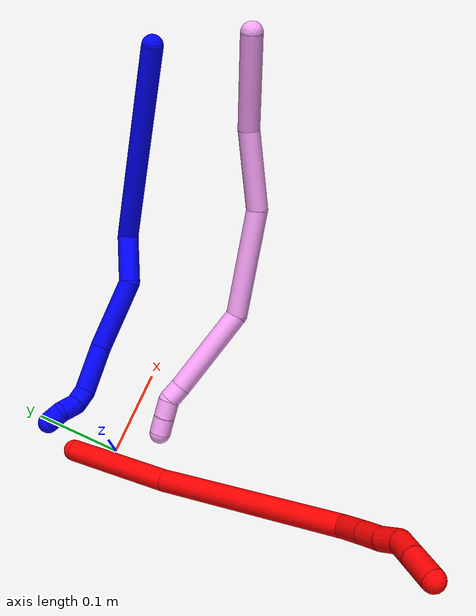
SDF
<sdf version="1.7">
 <world name="default">
  <model name="photoneo_s_sensor">
   <static>1</static>
   <pose>0 0 2 1.57079 1.57079 3.14159</pose>
   <link name="link">
    <inertial><mass>0.1</mass></inertial>
    <sensor name="sensor" type="depth">
     <update_rate>30</update_rate>
     <camera>
      <horizontal_fov>1.22</horizontal_fov>
      <image><width>1920</width><height>1200</height><format>B8G8R8</format></image>
      <clip><near>0.1</near><far>4</far></clip>
      <depth_camera><output>points</output></depth_camera>
     </camera>
     <plugin name="camera_plugin" filename="libgazebo_ros_depth_camera.so">
      <baseline>0.2</baseline>
      <alwaysOn>1</alwaysOn>
      <updateRate>0.0</updateRate>
      <cameraName>camera_ir</cameraName>
      <imageTopicName>/camera/color/image_raw</imageTopicName>
      <cameraInfoTopicName>/camera/color/camera_info</cameraInfoTopicName>
      <depthImageTopicName>/camera/depth/image_raw</depthImageTopicName>
      <depthImageCameraInfoTopicName>/camera/depth/camera_info</depthImageCameraInfoTopicName>
      <pointCloudTopicName>/camera/depth/points</pointCloudTopicName>
      <frameName>fr_optical</frameName>
      <pointCloudCutoff>0.1</pointCloudCutoff>
      <pointCloudCutoffMax>2.0</pointCloudCutoffMax>
      <distortionK1>0</distortionK1>
      <distortionK2>0</distortionK2>
      <distortionK3>0</distortionK3>
      <distortionT1>0</distortionT1>
      <distortionT2>0</distortionT2>
      <CxPrime>0</CxPrime>
      <Cx>0</Cx>
      <Cy>0</Cy>
      <focalLength>0</focalLength>
      <hackBaseline>0</hackBaseline>
     </plugin>
    </sensor>
   </link>
  </model>
  <model name="bin">
   <static>1</static>
   <link name="bottom">
    <collision name="collision-bottom">
     <pose>0 0 -0.01 0 -0 0</pose>
     <geometry><box><size>0.8 0.6 0.02</size></box></geometry>
     <surface>
      <friction><ode><mu>100</mu><mu2>100</mu2></ode></friction>
      <contact><collide_bitmask>65535</collide_bitmask></contact>
     </surface>
    </collision>
   </link>
   <link name="west_wall">
    <collision name="collision-west_wall">
     <pose>-0.41 0 0.1 0 -0 0</pose>
     <geometry><box><size>0.02 0.6 0.2</size></box></geometry>
     <surface>
      <friction><ode><mu>100</mu><mu2>100</mu2></ode></friction>
      <contact><collide_bitmask>65535</collide_bitmask></contact>
     </surface>
    </collision>
   </link>
   <link name="east_wall">
    <collision name="collision-east_wall">
     <pose>0.41 0 0.1 0 -0 0</pose>
     <geometry><box><size>0.02 0.6 0.2</size></box></geometry>
     <surface>
      <friction><ode><mu>100</mu><mu2>100</mu2></ode></friction>
      <contact><collide_bitmask>65535</collide_bitmask></contact>
     </surface>
    </collision>
   </link>
   <link name="south_wall">
    <collision name="collision-south_wall">
     <pose>0 -0.31 0.1 0 -0 0</pose>
     <geometry><box><size>0.8 0.02 0.2</size></box></geometry>
     <surface>
      <friction><ode><mu>100</mu><mu2>100</mu2></ode></friction>
      <contact><collide_bitmask>65535</collide_bitmask></contact>
     </surface>
    </collision>
   </link>
   <link name="north_wall">
    <collision name="collision-north_wall">
     <pose>0 0.31 0.1 0 -0 0</pose>
     <geometry><box><size>0.8 0.02 0.2</size></box></geometry>
     <surface>
      <friction><ode><mu>100</mu><mu2>100</mu2></ode></friction>
      <contact><collide_bitmask>65535</collide_bitmask></contact>
     </surface>
    </collision>
   </link>
  </model>
  <model name="1">
   <static>0</static>
   <link name="1">
    <collision name="collision-cylinder-e_1_1_4">
     <pose>-0.005474 0.007447 -0.118973 -3.07908 -0.045885 1.26627</pose>
     <geometry><cylinder><radius>0.0125</radius><length>0.238664</length></cylinder></geometry>
     <surface>
      <friction><ode><mu>1.16</mu><mu2>1.16</mu2><slip1>0</slip1><slip2>0</slip2></ode></friction>
      <contact><ode><kp>1e+06</kp><kd>1</kd><max_vel>0</max_vel><min_depth>0.001</min_depth></ode></contact>
     </surface>
    </collision>
    <visual name="visual-cylinder-e_1_1_4">
     <pose>-0.005474 0.007447 -0.118973 -3.07908 -0.045885 1.26627</pose>
     <geometry><cylinder><radius>0.0125</radius><length>0.238664</length></cylinder></geometry>
     <material><ambient>0 0 1 1</ambient></material>
    </visual>
    <collision name="collision-cylinder-e_2_4_5">
     <pose>-0.022508 -0.000977 -0.259351 2.50357 -0.409366 -1.12222</pose>
     <geometry><cylinder><radius>0.0125</radius><length>0.058092</length></cylinder></geometry>
     <surface>
      <friction><ode><mu>1.16</mu><mu2>1.16</mu2><slip1>0</slip1><slip2>0</slip2></ode></friction>
      <contact><ode><kp>1e+06</kp><kd>1</kd><max_vel>0</max_vel><min_depth>0.001</min_depth></ode></contact>
     </surface>
    </collision>
    <visual name="visual-cylinder-e_2_4_5">
     <pose>-0.022508 -0.000977 -0.259351 2.50357 -0.409366 -1.12222</pose>
     <geometry><cylinder><radius>0.0125</radius><length>0.058092</length></cylinder></geometry>
     <material><ambient>0 0 1 1</ambient></material>
    </visual>
    <collision name="collision-cylinder-e_3_5_6">
     <pose>-0.056474 -0.018297 -0.317218 3.10186 -0.550616 -3.00113</pose>
     <geometry><cylinder><radius>0.0125</radius><length>0.085643</length></cylinder></geometry>
     <surface>
      <friction><ode><mu>1.16</mu><mu2>1.16</mu2><slip1>0</slip1><slip2>0</slip2></ode></friction>
      <contact><ode><kp>1e+06</kp><kd>1</kd><max_vel>0</max_vel><min_depth>0.001</min_depth></ode></contact>
     </surface>
    </collision>
    <visual name="visual-cylinder-e_3_5_6">
     <pose>-0.056474 -0.018297 -0.317218 3.10186 -0.550616 -3.00113</pose>
     <geometry><cylinder><radius>0.0125</radius><length>0.085643</length></cylinder></geometry>
     <material><ambient>0 0 1 1</ambient></material>
    </visual>
    <collision name="collision-cylinder-e_4_6_7">
     <pose>-0.095344 -0.025201 -0.3766 2.90798 -0.610013 -2.42807</pose>
     <geometry><cylinder><radius>0.0125</radius><length>0.057484</length></cylinder></geometry>
     <surface>
      <friction><ode><mu>1.16</mu><mu2>1.16</mu2><slip1>0</slip1><slip2>0</slip2></ode></friction>
      <contact><ode><kp>1e+06</kp><kd>1</kd><max_vel>0</max_vel><min_depth>0.001</min_depth></ode></contact>
     </surface>
    </collision>
    <visual name="visual-cylinder-e_4_6_7">
     <pose>-0.095344 -0.025201 -0.3766 2.90798 -0.610013 -2.42807</pose>
     <geometry><cylinder><radius>0.0125</radius><length>0.057484</length></cylinder></geometry>
     <material><ambient>0 0 1 1</ambient></material>
    </visual>
    <collision name="collision-cylinder-e_5_7_8">
     <pose>-0.120784 -0.033505 -0.403036 2.4605 -1.10353 -2.0969</pose>
     <geometry><cylinder><radius>0.0125</radius><length>0.020103</length></cylinder></geometry>
     <surface>
      <friction><ode><mu>1.16</mu><mu2>1.16</mu2><slip1>0</slip1><slip2>0</slip2></ode></friction>
      <contact><ode><kp>1e+06</kp><kd>1</kd><max_vel>0</max_vel><min_depth>0.001</min_depth></ode></contact>
     </surface>
    </collision>
    <visual name="visual-cylinder-e_5_7_8">
     <pose>-0.120784 -0.033505 -0.403036 2.4605 -1.10353 -2.0969</pose>
     <geometry><cylinder><radius>0.0125</radius><length>0.020103</length></cylinder></geometry>
     <material><ambient>0 0 1 1</ambient></material>
    </visual>
    <collision name="collision-cylinder-e_6_8_9">
     <pose>-0.139515 -0.035138 -0.408383 -2.55435 -1.34919 2.41868</pose>
     <geometry><cylinder><radius>0.0125</radius><length>0.020002</length></cylinder></geometry>
     <surface>
      <friction><ode><mu>1.16</mu><mu2>1.16</mu2><slip1>0</slip1><slip2>0</slip2></ode></friction>
      <contact><ode><kp>1e+06</kp><kd>1</kd><max_vel>0</max_vel><min_depth>0.001</min_depth></ode></contact>
     </surface>
    </collision>
    <visual name="visual-cylinder-e_6_8_9">
     <pose>-0.139515 -0.035138 -0.408383 -2.55435 -1.34919 2.41868</pose>
     <geometry><cylinder><radius>0.0125</radius><length>0.020002</length></cylinder></geometry>
     <material><ambient>0 0 1 1</ambient></material>
    </visual>
    <collision name="collision-cylinder-e_7_9_2">
     <pose>-0.156912 -0.03128 -0.416109 -2.72065 -0.868951 2.2787</pose>
     <geometry><cylinder><radius>0.0125</radius><length>0.020012</length></cylinder></geometry>
     <surface>
      <friction><ode><mu>1.16</mu><mu2>1.16</mu2><slip1>0</slip1><slip2>0</slip2></ode></friction>
      <contact><ode><kp>1e+06</kp><kd>1</kd><max_vel>0</max_vel><min_depth>0.001</min_depth></ode></contact>
     </surface>
    </collision>
    <visual name="visual-cylinder-e_7_9_2">
     <pose>-0.156912 -0.03128 -0.416109 -2.72065 -0.868951 2.2787</pose>
     <geometry><cylinder><radius>0.0125</radius><length>0.020012</length></cylinder></geometry>
     <material><ambient>0 0 1 1</ambient></material>
    </visual>
    <collision name="collision-sphere-2">
     <pose>-0.164554 -0.02864 -0.422006 0 -0 0</pose>
     <geometry><sphere><radius>0.0125</radius></sphere></geometry>
     <surface>
      <friction><ode><mu>1.16</mu><mu2>1.16</mu2><slip1>0</slip1><slip2>0</slip2></ode></friction>
      <contact><ode><kp>1e+06</kp><kd>1</kd><max_vel>0</max_vel><min_depth>0.001</min_depth></ode></contact>
     </surface>
    </collision>
    <visual name="visual-sphere-2">
     <pose>-0.164554 -0.02864 -0.422006 0 -0 0</pose>
     <geometry><sphere><radius>0.0125</radius></sphere></geometry>
     <material><ambient>0 0 1 1</ambient></material>
    </visual>
    <collision name="collision-sphere-9">
     <pose>-0.149271 -0.03392 -0.410213 0 -0 0</pose>
     <geometry><sphere><radius>0.0125</radius></sphere></geometry>
     <surface>
      <friction><ode><mu>1.16</mu><mu2>1.16</mu2><slip1>0</slip1><slip2>0</slip2></ode></friction>
      <contact><ode><kp>1e+06</kp><kd>1</kd><max_vel>0</max_vel><min_depth>0.001</min_depth></ode></contact>
     </surface>
    </collision>
    <visual name="visual-sphere-9">
     <pose>-0.149271 -0.03392 -0.410213 0 -0 0</pose>
     <geometry><sphere><radius>0.0125</radius></sphere></geometry>
     <material><ambient>0 0 1 1</ambient></material>
    </visual>
    <collision name="collision-sphere-4">
     <pose>-0.010947 0.014893 -0.237947 0 -0 0</pose>
     <geometry><sphere><radius>0.0125</radius></sphere></geometry>
     <surface>
      <friction><ode><mu>1.16</mu><mu2>1.16</mu2><slip1>0</slip1><slip2>0</slip2></ode></friction>
      <contact><ode><kp>1e+06</kp><kd>1</kd><max_vel>0</max_vel><min_depth>0.001</min_depth></ode></contact>
     </surface>
    </collision>
    <visual name="visual-sphere-4">
     <pose>-0.010947 0.014893 -0.237947 0 -0 0</pose>
     <geometry><sphere><radius>0.0125</radius></sphere></geometry>
     <material><ambient>0 0 1 1</ambient></material>
    </visual>
    <collision name="collision-sphere-1">
     <geometry><sphere><radius>0.0125</radius></sphere></geometry>
     <surface>
      <friction><ode><mu>1.16</mu><mu2>1.16</mu2><slip1>0</slip1><slip2>0</slip2></ode></friction>
      <contact><ode><kp>1e+06</kp><kd>1</kd><max_vel>0</max_vel><min_depth>0.001</min_depth></ode></contact>
     </surface>
    </collision>
    <visual name="visual-sphere-1">
     <geometry><sphere><radius>0.0125</radius></sphere></geometry>
     <material><ambient>0 0 1 1</ambient></material>
    </visual>
    <collision name="collision-sphere-8">
     <pose>-0.129758 -0.036356 -0.406553 0 -0 0</pose>
     <geometry><sphere><radius>0.0125</radius></sphere></geometry>
     <surface>
      <friction><ode><mu>1.16</mu><mu2>1.16</mu2><slip1>0</slip1><slip2>0</slip2></ode></friction>
      <contact><ode><kp>1e+06</kp><kd>1</kd><max_vel>0</max_vel><min_depth>0.001</min_depth></ode></contact>
     </surface>
    </collision>
    <visual name="visual-sphere-8">
     <pose>-0.129758 -0.036356 -0.406553 0 -0 0</pose>
     <geometry><sphere><radius>0.0125</radius></sphere></geometry>
     <material><ambient>0 0 1 1</ambient></material>
    </visual>
    <collision name="collision-sphere-5">
     <pose>-0.034069 -0.016848 -0.280755 0 -0 0</pose>
     <geometry><sphere><radius>0.0125</radius></sphere></geometry>
     <surface>
      <friction><ode><mu>1.16</mu><mu2>1.16</mu2><slip1>0</slip1><slip2>0</slip2></ode></friction>
      <contact><ode><kp>1e+06</kp><kd>1</kd><max_vel>0</max_vel><min_depth>0.001</min_depth></ode></contact>
     </surface>
    </collision>
    <visual name="visual-sphere-5">
     <pose>-0.034069 -0.016848 -0.280755 0 -0 0</pose>
     <geometry><sphere><radius>0.0125</radius></sphere></geometry>
     <material><ambient>0 0 1 1</ambient></material>
    </visual>
    <collision name="collision-sphere-6">
     <pose>-0.078879 -0.019747 -0.353682 0 -0 0</pose>
     <geometry><sphere><radius>0.0125</radius></sphere></geometry>
     <surface>
      <friction><ode><mu>1.16</mu><mu2>1.16</mu2><slip1>0</slip1><slip2>0</slip2></ode></friction>
      <contact><ode><kp>1e+06</kp><kd>1</kd><max_vel>0</max_vel><min_depth>0.001</min_depth></ode></contact>
     </surface>
    </collision>
    <visual name="visual-sphere-6">
     <pose>-0.078879 -0.019747 -0.353682 0 -0 0</pose>
     <geometry><sphere><radius>0.0125</radius></sphere></geometry>
     <material><ambient>0 0 1 1</ambient></material>
    </visual>
    <collision name="collision-sphere-7">
     <pose>-0.11181 -0.030654 -0.399518 0 -0 0</pose>
     <geometry><sphere><radius>0.0125</radius></sphere></geometry>
     <surface>
      <friction><ode><mu>1.16</mu><mu2>1.16</mu2><slip1>0</slip1><slip2>0</slip2></ode></friction>
      <contact><ode><kp>1e+06</kp><kd>1</kd><max_vel>0</max_vel><min_depth>0.001</min_depth></ode></contact>
     </surface>
    </collision>
    <visual name="visual-sphere-7">
     <pose>-0.11181 -0.030654 -0.399518 0 -0 0</pose>
     <geometry><sphere><radius>0.0125</radius></sphere></geometry>
     <material><ambient>0 0 1 1</ambient></material>
    </visual>
    <inertial>
     <pose>-0.04258 -0.006595 -0.23375 0 -0 0</pose>
     <mass>0.5</mass>
     <inertia>
      <ixx>0.001334</ixx>
      <ixy>0</ixy>
      <ixz>0</ixz>
      <iyy>0.000788</iyy>
      <iyz>0</iyz>
      <izz>1.4e-05</izz>
     </inertia>
    </inertial>
   </link>
   <pose>0.402296 0.12955 0.218787 -0.582894 0.566936 -0.564974</pose>
  </model>
  <model name="2">
   <static>0</static>
   <link name="2">
    <collision name="collision-cylinder-e_1_1_4">
     <pose>-0.002892 -0.038057 0.05107 0.64042 -0.045378 -0.015051</pose>
     <geometry><cylinder><radius>0.0125</radius><length>0.127511</length></cylinder></geometry>
     <surface>
      <friction><ode><mu>1.16</mu><mu2>1.16</mu2><slip1>0</slip1><slip2>0</slip2></ode></friction>
      <contact><ode><kp>1e+06</kp><kd>1</kd><max_vel>0</max_vel><min_depth>0.001</min_depth></ode></contact>
     </surface>
    </collision>
    <visual name="visual-cylinder-e_1_1_4">
     <pose>-0.002892 -0.038057 0.05107 0.64042 -0.045378 -0.015051</pose>
     <geometry><cylinder><radius>0.0125</radius><length>0.127511</length></cylinder></geometry>
     <material><ambient>1 0 0 1</ambient></material>
    </visual>
    <collision name="collision-cylinder-e_2_4_5">
     <pose>-0.00144 -0.148526 0.187161 0.705471 0.03888 0.014315</pose>
     <geometry><cylinder><radius>0.0125</radius><length>0.223528</length></cylinder></geometry>
     <surface>
      <friction><ode><mu>1.16</mu><mu2>1.16</mu2><slip1>0</slip1><slip2>0</slip2></ode></friction>
      <contact><ode><kp>1e+06</kp><kd>1</kd><max_vel>0</max_vel><min_depth>0.001</min_depth></ode></contact>
     </surface>
    </collision>
    <visual name="visual-cylinder-e_2_4_5">
     <pose>-0.00144 -0.148526 0.187161 0.705471 0.03888 0.014315</pose>
     <geometry><cylinder><radius>0.0125</radius><length>0.223528</length></cylinder></geometry>
     <material><ambient>1 0 0 1</ambient></material>
    </visual>
    <collision name="collision-cylinder-e_3_5_6">
     <pose>0.011501 -0.229907 0.283537 0.668589 0.536075 0.19021</pose>
     <geometry><cylinder><radius>0.0125</radius><length>0.03366</length></cylinder></geometry>
     <surface>
      <friction><ode><mu>1.16</mu><mu2>1.16</mu2><slip1>0</slip1><slip2>0</slip2></ode></friction>
      <contact><ode><kp>1e+06</kp><kd>1</kd><max_vel>0</max_vel><min_depth>0.001</min_depth></ode></contact>
     </surface>
    </collision>
    <visual name="visual-cylinder-e_3_5_6">
     <pose>0.011501 -0.229907 0.283537 0.668589 0.536075 0.19021</pose>
     <geometry><cylinder><radius>0.0125</radius><length>0.03366</length></cylinder></geometry>
     <material><ambient>1 0 0 1</ambient></material>
    </visual>
    <collision name="collision-cylinder-e_4_6_7">
     <pose>0.027093 -0.246211 0.304517 0.651144 0.524123 0.180608</pose>
     <geometry><cylinder><radius>0.0125</radius><length>0.027957</length></cylinder></geometry>
     <surface>
      <friction><ode><mu>1.16</mu><mu2>1.16</mu2><slip1>0</slip1><slip2>0</slip2></ode></friction>
      <contact><ode><kp>1e+06</kp><kd>1</kd><max_vel>0</max_vel><min_depth>0.001</min_depth></ode></contact>
     </surface>
    </collision>
    <visual name="visual-cylinder-e_4_6_7">
     <pose>0.027093 -0.246211 0.304517 0.651144 0.524123 0.180608</pose>
     <geometry><cylinder><radius>0.0125</radius><length>0.027957</length></cylinder></geometry>
     <material><ambient>1 0 0 1</ambient></material>
    </visual>
    <collision name="collision-cylinder-e_5_7_8">
     <pose>0.039327 -0.261438 0.321757 0.803329 0.445711 0.191925</pose>
     <geometry><cylinder><radius>0.0125</radius><length>0.024305</length></cylinder></geometry>
     <surface>
      <friction><ode><mu>1.16</mu><mu2>1.16</mu2><slip1>0</slip1><slip2>0</slip2></ode></friction>
      <contact><ode><kp>1e+06</kp><kd>1</kd><max_vel>0</max_vel><min_depth>0.001</min_depth></ode></contact>
     </surface>
    </collision>
    <visual name="visual-cylinder-e_5_7_8">
     <pose>0.039327 -0.261438 0.321757 0.803329 0.445711 0.191925</pose>
     <geometry><cylinder><radius>0.0125</radius><length>0.024305</length></cylinder></geometry>
     <material><ambient>1 0 0 1</ambient></material>
    </visual>
    <collision name="collision-cylinder-e_6_8_9">
     <pose>0.052313 -0.271888 0.34055 0.225004 0.594071 0.069136</pose>
     <geometry><cylinder><radius>0.0125</radius><length>0.027682</length></cylinder></geometry>
     <surface>
      <friction><ode><mu>1.16</mu><mu2>1.16</mu2><slip1>0</slip1><slip2>0</slip2></ode></friction>
      <contact><ode><kp>1e+06</kp><kd>1</kd><max_vel>0</max_vel><min_depth>0.001</min_depth></ode></contact>
     </surface>
    </collision>
    <visual name="visual-cylinder-e_6_8_9">
     <pose>0.052313 -0.271888 0.34055 0.225004 0.594071 0.069136</pose>
     <geometry><cylinder><radius>0.0125</radius><length>0.027682</length></cylinder></geometry>
     <material><ambient>1 0 0 1</ambient></material>
    </visual>
    <collision name="collision-cylinder-e_7_9_2">
     <pose>0.068154 -0.277562 0.367136 0.199514 0.475501 0.0485</pose>
     <geometry><cylinder><radius>0.0125</radius><length>0.035357</length></cylinder></geometry>
     <surface>
      <friction><ode><mu>1.16</mu><mu2>1.16</mu2><slip1>0</slip1><slip2>0</slip2></ode></friction>
      <contact><ode><kp>1e+06</kp><kd>1</kd><max_vel>0</max_vel><min_depth>0.001</min_depth></ode></contact>
     </surface>
    </collision>
    <visual name="visual-cylinder-e_7_9_2">
     <pose>0.068154 -0.277562 0.367136 0.199514 0.475501 0.0485</pose>
     <geometry><cylinder><radius>0.0125</radius><length>0.035357</length></cylinder></geometry>
     <material><ambient>1 0 0 1</ambient></material>
    </visual>
    <collision name="collision-sphere-2">
     <pose>0.076246 -0.280677 0.382542 0 -0 0</pose>
     <geometry><sphere><radius>0.0125</radius></sphere></geometry>
     <surface>
      <friction><ode><mu>1.16</mu><mu2>1.16</mu2><slip1>0</slip1><slip2>0</slip2></ode></friction>
      <contact><ode><kp>1e+06</kp><kd>1</kd><max_vel>0</max_vel><min_depth>0.001</min_depth></ode></contact>
     </surface>
    </collision>
    <visual name="visual-sphere-2">
     <pose>0.076246 -0.280677 0.382542 0 -0 0</pose>
     <geometry><sphere><radius>0.0125</radius></sphere></geometry>
     <material><ambient>1 0 0 1</ambient></material>
    </visual>
    <collision name="collision-sphere-9">
     <pose>0.060061 -0.274447 0.351731 0 -0 0</pose>
     <geometry><sphere><radius>0.0125</radius></sphere></geometry>
     <surface>
      <friction><ode><mu>1.16</mu><mu2>1.16</mu2><slip1>0</slip1><slip2>0</slip2></ode></friction>
      <contact><ode><kp>1e+06</kp><kd>1</kd><max_vel>0</max_vel><min_depth>0.001</min_depth></ode></contact>
     </surface>
    </collision>
    <visual name="visual-sphere-9">
     <pose>0.060061 -0.274447 0.351731 0 -0 0</pose>
     <geometry><sphere><radius>0.0125</radius></sphere></geometry>
     <material><ambient>1 0 0 1</ambient></material>
    </visual>
    <collision name="collision-sphere-4">
     <pose>-0.005784 -0.076114 0.102139 0 -0 0</pose>
     <geometry><sphere><radius>0.0125</radius></sphere></geometry>
     <surface>
      <friction><ode><mu>1.16</mu><mu2>1.16</mu2><slip1>0</slip1><slip2>0</slip2></ode></friction>
      <contact><ode><kp>1e+06</kp><kd>1</kd><max_vel>0</max_vel><min_depth>0.001</min_depth></ode></contact>
     </surface>
    </collision>
    <visual name="visual-sphere-4">
     <pose>-0.005784 -0.076114 0.102139 0 -0 0</pose>
     <geometry><sphere><radius>0.0125</radius></sphere></geometry>
     <material><ambient>1 0 0 1</ambient></material>
    </visual>
    <collision name="collision-sphere-1">
     <geometry><sphere><radius>0.0125</radius></sphere></geometry>
     <surface>
      <friction><ode><mu>1.16</mu><mu2>1.16</mu2><slip1>0</slip1><slip2>0</slip2></ode></friction>
      <contact><ode><kp>1e+06</kp><kd>1</kd><max_vel>0</max_vel><min_depth>0.001</min_depth></ode></contact>
     </surface>
    </collision>
    <visual name="visual-sphere-1">
     <geometry><sphere><radius>0.0125</radius></sphere></geometry>
     <material><ambient>1 0 0 1</ambient></material>
    </visual>
    <collision name="collision-sphere-8">
     <pose>0.044566 -0.269329 0.32937 0 -0 0</pose>
     <geometry><sphere><radius>0.0125</radius></sphere></geometry>
     <surface>
      <friction><ode><mu>1.16</mu><mu2>1.16</mu2><slip1>0</slip1><slip2>0</slip2></ode></friction>
      <contact><ode><kp>1e+06</kp><kd>1</kd><max_vel>0</max_vel><min_depth>0.001</min_depth></ode></contact>
     </surface>
    </collision>
    <visual name="visual-sphere-8">
     <pose>0.044566 -0.269329 0.32937 0 -0 0</pose>
     <geometry><sphere><radius>0.0125</radius></sphere></geometry>
     <material><ambient>1 0 0 1</ambient></material>
    </visual>
    <collision name="collision-sphere-5">
     <pose>0.002904 -0.220938 0.272184 0 -0 0</pose>
     <geometry><sphere><radius>0.0125</radius></sphere></geometry>
     <surface>
      <friction><ode><mu>1.16</mu><mu2>1.16</mu2><slip1>0</slip1><slip2>0</slip2></ode></friction>
      <contact><ode><kp>1e+06</kp><kd>1</kd><max_vel>0</max_vel><min_depth>0.001</min_depth></ode></contact>
     </surface>
    </collision>
    <visual name="visual-sphere-5">
     <pose>0.002904 -0.220938 0.272184 0 -0 0</pose>
     <geometry><sphere><radius>0.0125</radius></sphere></geometry>
     <material><ambient>1 0 0 1</ambient></material>
    </visual>
    <collision name="collision-sphere-6">
     <pose>0.020097 -0.238876 0.294891 0 -0 0</pose>
     <geometry><sphere><radius>0.0125</radius></sphere></geometry>
     <surface>
      <friction><ode><mu>1.16</mu><mu2>1.16</mu2><slip1>0</slip1><slip2>0</slip2></ode></friction>
      <contact><ode><kp>1e+06</kp><kd>1</kd><max_vel>0</max_vel><min_depth>0.001</min_depth></ode></contact>
     </surface>
    </collision>
    <visual name="visual-sphere-6">
     <pose>0.020097 -0.238876 0.294891 0 -0 0</pose>
     <geometry><sphere><radius>0.0125</radius></sphere></geometry>
     <material><ambient>1 0 0 1</ambient></material>
    </visual>
    <collision name="collision-sphere-7">
     <pose>0.034088 -0.253546 0.314143 0 -0 0</pose>
     <geometry><sphere><radius>0.0125</radius></sphere></geometry>
     <surface>
      <friction><ode><mu>1.16</mu><mu2>1.16</mu2><slip1>0</slip1><slip2>0</slip2></ode></friction>
      <contact><ode><kp>1e+06</kp><kd>1</kd><max_vel>0</max_vel><min_depth>0.001</min_depth></ode></contact>
     </surface>
    </collision>
    <visual name="visual-sphere-7">
     <pose>0.034088 -0.253546 0.314143 0 -0 0</pose>
     <geometry><sphere><radius>0.0125</radius></sphere></geometry>
     <material><ambient>1 0 0 1</ambient></material>
    </visual>
    <inertial>
     <pose>0.010535 -0.152737 0.193266 0 -0 0</pose>
     <mass>0.5</mass>
     <inertia>
      <ixx>0.00115</ixx>
      <ixy>0</ixy>
      <ixz>0</ixz>
      <iyy>0.000864</iyy>
      <iyz>0</iyz>
      <izz>0.000714</izz>
     </inertia>
    </inertial>
   </link>
   <pose>-0.020711 0.043794 0.011498 -0.897318 -1.09617 1.92375</pose>
  </model>
  <model name="4">
   <static>0</static>
   <link name="4">
    <collision name="collision-cylinder-e_1_1_4">
     <pose>-0.00839 0.039686 -0.037459 -2.32734 -0.152542 0.350791</pose>
     <geometry><cylinder><radius>0.0125</radius><length>0.110428</length></cylinder></geometry>
     <surface>
      <friction><ode><mu>1.16</mu><mu2>1.16</mu2><slip1>0</slip1><slip2>0</slip2></ode></friction>
      <contact><ode><kp>1e+06</kp><kd>1</kd><max_vel>0</max_vel><min_depth>0.001</min_depth></ode></contact>
     </surface>
    </collision>
    <visual name="visual-cylinder-e_1_1_4">
     <pose>-0.00839 0.039686 -0.037459 -2.32734 -0.152542 0.350791</pose>
     <geometry><cylinder><radius>0.0125</radius><length>0.110428</length></cylinder></geometry>
     <material><ambient>1 0.65098 0.996078 1</ambient></material>
    </visual>
    <collision name="collision-cylinder-e_2_4_5">
     <pose>-0.012495 0.111321 -0.1083 -2.37811 0.092468 -0.229495</pose>
     <geometry><cylinder><radius>0.0125</radius><length>0.092809</length></cylinder></geometry>
     <surface>
      <friction><ode><mu>1.16</mu><mu2>1.16</mu2><slip1>0</slip1><slip2>0</slip2></ode></friction>
      <contact><ode><kp>1e+06</kp><kd>1</kd><max_vel>0</max_vel><min_depth>0.001</min_depth></ode></contact>
     </surface>
    </collision>
    <visual name="visual-cylinder-e_2_4_5">
     <pose>-0.012495 0.111321 -0.1083 -2.37811 0.092468 -0.229495</pose>
     <geometry><cylinder><radius>0.0125</radius><length>0.092809</length></cylinder></geometry>
     <material><ambient>1 0.65098 0.996078 1</ambient></material>
    </visual>
    <collision name="collision-cylinder-e_3_5_6">
     <pose>-0.010346 0.172819 -0.19777 -2.65672 -0.03368 0.135991</pose>
     <geometry><cylinder><radius>0.0125</radius><length>0.126866</length></cylinder></geometry>
     <surface>
      <friction><ode><mu>1.16</mu><mu2>1.16</mu2><slip1>0</slip1><slip2>0</slip2></ode></friction>
      <contact><ode><kp>1e+06</kp><kd>1</kd><max_vel>0</max_vel><min_depth>0.001</min_depth></ode></contact>
     </surface>
    </collision>
    <visual name="visual-cylinder-e_3_5_6">
     <pose>-0.010346 0.172819 -0.19777 -2.65672 -0.03368 0.135991</pose>
     <geometry><cylinder><radius>0.0125</radius><length>0.126866</length></cylinder></geometry>
     <material><ambient>1 0.65098 0.996078 1</ambient></material>
    </visual>
    <collision name="collision-cylinder-e_4_6_7">
     <pose>-0.025098 0.203213 -0.306104 -3.12542 -0.236909 3.00588</pose>
     <geometry><cylinder><radius>0.0125</radius><length>0.107506</length></cylinder></geometry>
     <surface>
      <friction><ode><mu>1.16</mu><mu2>1.16</mu2><slip1>0</slip1><slip2>0</slip2></ode></friction>
      <contact><ode><kp>1e+06</kp><kd>1</kd><max_vel>0</max_vel><min_depth>0.001</min_depth></ode></contact>
     </surface>
    </collision>
    <visual name="visual-cylinder-e_4_6_7">
     <pose>-0.025098 0.203213 -0.306104 -3.12542 -0.236909 3.00588</pose>
     <geometry><cylinder><radius>0.0125</radius><length>0.107506</length></cylinder></geometry>
     <material><ambient>1 0.65098 0.996078 1</ambient></material>
    </visual>
    <collision name="collision-cylinder-e_5_7_8">
     <pose>-0.039934 0.203163 -0.368205 3.05104 -0.220699 -2.36526</pose>
     <geometry><cylinder><radius>0.0125</radius><length>0.020287</length></cylinder></geometry>
     <surface>
      <friction><ode><mu>1.16</mu><mu2>1.16</mu2><slip1>0</slip1><slip2>0</slip2></ode></friction>
      <contact><ode><kp>1e+06</kp><kd>1</kd><max_vel>0</max_vel><min_depth>0.001</min_depth></ode></contact>
     </surface>
    </collision>
    <visual name="visual-cylinder-e_5_7_8">
     <pose>-0.039934 0.203163 -0.368205 3.05104 -0.220699 -2.36526</pose>
     <geometry><cylinder><radius>0.0125</radius><length>0.020287</length></cylinder></geometry>
     <material><ambient>1 0.65098 0.996078 1</ambient></material>
    </visual>
    <collision name="collision-cylinder-e_6_8_9">
     <pose>-0.042481 0.206047 -0.388199 -2.78477 -0.030128 0.166698</pose>
     <geometry><cylinder><radius>0.0125</radius><length>0.021646</length></cylinder></geometry>
     <surface>
      <friction><ode><mu>1.16</mu><mu2>1.16</mu2><slip1>0</slip1><slip2>0</slip2></ode></friction>
      <contact><ode><kp>1e+06</kp><kd>1</kd><max_vel>0</max_vel><min_depth>0.001</min_depth></ode></contact>
     </surface>
    </collision>
    <visual name="visual-cylinder-e_6_8_9">
     <pose>-0.042481 0.206047 -0.388199 -2.78477 -0.030128 0.166698</pose>
     <geometry><cylinder><radius>0.0125</radius><length>0.021646</length></cylinder></geometry>
     <material><ambient>1 0.65098 0.996078 1</ambient></material>
    </visual>
    <collision name="collision-cylinder-e_7_9_2">
     <pose>-0.043276 0.21378 -0.407758 -2.74429 -0.045869 0.226917</pose>
     <geometry><cylinder><radius>0.0125</radius><length>0.020459</length></cylinder></geometry>
     <surface>
      <friction><ode><mu>1.16</mu><mu2>1.16</mu2><slip1>0</slip1><slip2>0</slip2></ode></friction>
      <contact><ode><kp>1e+06</kp><kd>1</kd><max_vel>0</max_vel><min_depth>0.001</min_depth></ode></contact>
     </surface>
    </collision>
    <visual name="visual-cylinder-e_7_9_2">
     <pose>-0.043276 0.21378 -0.407758 -2.74429 -0.045869 0.226917</pose>
     <geometry><cylinder><radius>0.0125</radius><length>0.020459</length></cylinder></geometry>
     <material><ambient>1 0.65098 0.996078 1</ambient></material>
    </visual>
    <collision name="collision-sphere-2">
     <pose>-0.043745 0.217734 -0.417181 0 -0 0</pose>
     <geometry><sphere><radius>0.0125</radius></sphere></geometry>
     <surface>
      <friction><ode><mu>1.16</mu><mu2>1.16</mu2><slip1>0</slip1><slip2>0</slip2></ode></friction>
      <contact><ode><kp>1e+06</kp><kd>1</kd><max_vel>0</max_vel><min_depth>0.001</min_depth></ode></contact>
     </surface>
    </collision>
    <visual name="visual-sphere-2">
     <pose>-0.043745 0.217734 -0.417181 0 -0 0</pose>
     <geometry><sphere><radius>0.0125</radius></sphere></geometry>
     <material><ambient>1 0.65098 0.996078 1</ambient></material>
    </visual>
    <collision name="collision-sphere-9">
     <pose>-0.042807 0.209826 -0.398336 0 -0 0</pose>
     <geometry><sphere><radius>0.0125</radius></sphere></geometry>
     <surface>
      <friction><ode><mu>1.16</mu><mu2>1.16</mu2><slip1>0</slip1><slip2>0</slip2></ode></friction>
      <contact><ode><kp>1e+06</kp><kd>1</kd><max_vel>0</max_vel><min_depth>0.001</min_depth></ode></contact>
     </surface>
    </collision>
    <visual name="visual-sphere-9">
     <pose>-0.042807 0.209826 -0.398336 0 -0 0</pose>
     <geometry><sphere><radius>0.0125</radius></sphere></geometry>
     <material><ambient>1 0.65098 0.996078 1</ambient></material>
    </visual>
    <collision name="collision-sphere-4">
     <pose>-0.01678 0.079372 -0.074919 0 -0 0</pose>
     <geometry><sphere><radius>0.0125</radius></sphere></geometry>
     <surface>
      <friction><ode><mu>1.16</mu><mu2>1.16</mu2><slip1>0</slip1><slip2>0</slip2></ode></friction>
      <contact><ode><kp>1e+06</kp><kd>1</kd><max_vel>0</max_vel><min_depth>0.001</min_depth></ode></contact>
     </surface>
    </collision>
    <visual name="visual-sphere-4">
     <pose>-0.01678 0.079372 -0.074919 0 -0 0</pose>
     <geometry><sphere><radius>0.0125</radius></sphere></geometry>
     <material><ambient>1 0.65098 0.996078 1</ambient></material>
    </visual>
    <collision name="collision-sphere-1">
     <geometry><sphere><radius>0.0125</radius></sphere></geometry>
     <surface>
      <friction><ode><mu>1.16</mu><mu2>1.16</mu2><slip1>0</slip1><slip2>0</slip2></ode></friction>
      <contact><ode><kp>1e+06</kp><kd>1</kd><max_vel>0</max_vel><min_depth>0.001</min_depth></ode></contact>
     </surface>
    </collision>
    <visual name="visual-sphere-1">
     <geometry><sphere><radius>0.0125</radius></sphere></geometry>
     <material><ambient>1 0.65098 0.996078 1</ambient></material>
    </visual>
    <collision name="collision-sphere-8">
     <pose>-0.042155 0.202268 -0.378063 0 -0 0</pose>
     <geometry><sphere><radius>0.0125</radius></sphere></geometry>
     <surface>
      <friction><ode><mu>1.16</mu><mu2>1.16</mu2><slip1>0</slip1><slip2>0</slip2></ode></friction>
      <contact><ode><kp>1e+06</kp><kd>1</kd><max_vel>0</max_vel><min_depth>0.001</min_depth></ode></contact>
     </surface>
    </collision>
    <visual name="visual-sphere-8">
     <pose>-0.042155 0.202268 -0.378063 0 -0 0</pose>
     <geometry><sphere><radius>0.0125</radius></sphere></geometry>
     <material><ambient>1 0.65098 0.996078 1</ambient></material>
    </visual>
    <collision name="collision-sphere-5">
     <pose>-0.00821 0.14327 -0.14168 0 -0 0</pose>
     <geometry><sphere><radius>0.0125</radius></sphere></geometry>
     <surface>
      <friction><ode><mu>1.16</mu><mu2>1.16</mu2><slip1>0</slip1><slip2>0</slip2></ode></friction>
      <contact><ode><kp>1e+06</kp><kd>1</kd><max_vel>0</max_vel><min_depth>0.001</min_depth></ode></contact>
     </surface>
    </collision>
    <visual name="visual-sphere-5">
     <pose>-0.00821 0.14327 -0.14168 0 -0 0</pose>
     <geometry><sphere><radius>0.0125</radius></sphere></geometry>
     <material><ambient>1 0.65098 0.996078 1</ambient></material>
    </visual>
    <collision name="collision-sphere-6">
     <pose>-0.012482 0.202368 -0.253859 0 -0 0</pose>
     <geometry><sphere><radius>0.0125</radius></sphere></geometry>
     <surface>
      <friction><ode><mu>1.16</mu><mu2>1.16</mu2><slip1>0</slip1><slip2>0</slip2></ode></friction>
      <contact><ode><kp>1e+06</kp><kd>1</kd><max_vel>0</max_vel><min_depth>0.001</min_depth></ode></contact>
     </surface>
    </collision>
    <visual name="visual-sphere-6">
     <pose>-0.012482 0.202368 -0.253859 0 -0 0</pose>
     <geometry><sphere><radius>0.0125</radius></sphere></geometry>
     <material><ambient>1 0.65098 0.996078 1</ambient></material>
    </visual>
    <collision name="collision-sphere-7">
     <pose>-0.037713 0.204058 -0.358348 0 -0 0</pose>
     <geometry><sphere><radius>0.0125</radius></sphere></geometry>
     <surface>
      <friction><ode><mu>1.16</mu><mu2>1.16</mu2><slip1>0</slip1><slip2>0</slip2></ode></friction>
      <contact><ode><kp>1e+06</kp><kd>1</kd><max_vel>0</max_vel><min_depth>0.001</min_depth></ode></contact>
     </surface>
    </collision>
    <visual name="visual-sphere-7">
     <pose>-0.037713 0.204058 -0.358348 0 -0 0</pose>
     <geometry><sphere><radius>0.0125</radius></sphere></geometry>
     <material><ambient>1 0.65098 0.996078 1</ambient></material>
    </visual>
    <inertial>
     <pose>-0.017424 0.142882 -0.192802 0 -0 0</pose>
     <mass>0.5</mass>
     <inertia>
      <ixx>0.000306</ixx>
      <ixy>0</ixy>
      <ixz>0</ixz>
      <iyy>-8.9e-05</iyy>
      <iyz>0</iyz>
      <izz>-0.000206</izz>
     </inertia>
    </inertial>
   </link>
   <pose>0.438799 0.02745 0.263547 -1.43044 -0.66124 -1.73725</pose>
  </model>
 </world>
</sdf>
